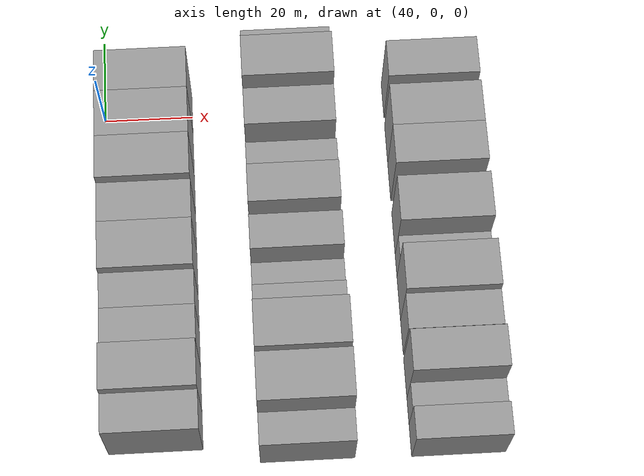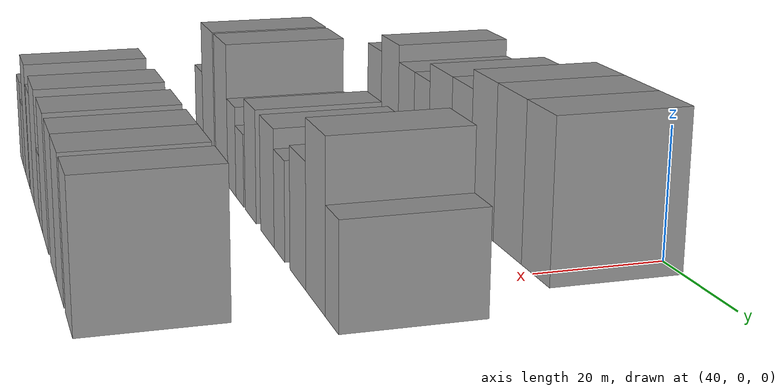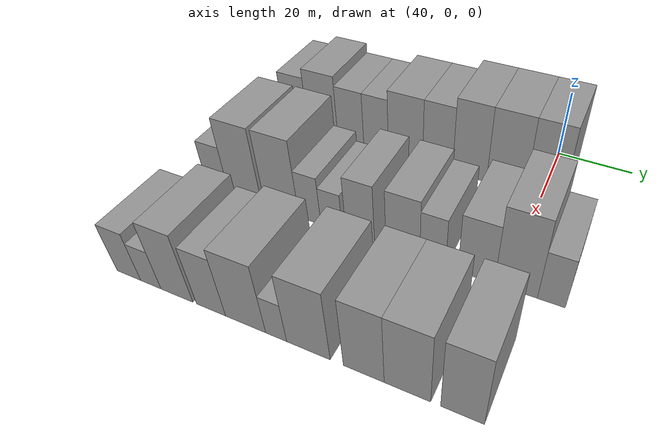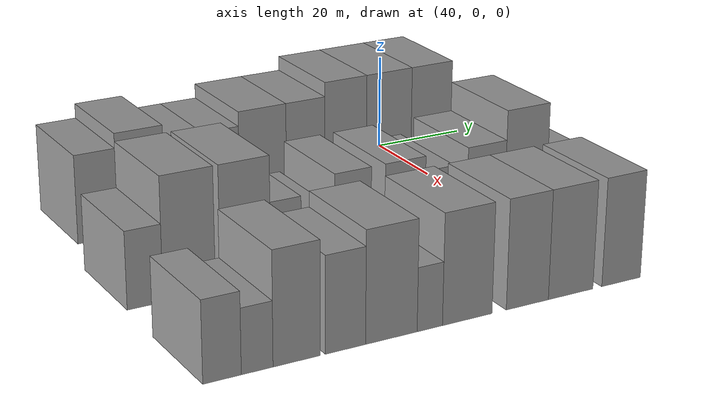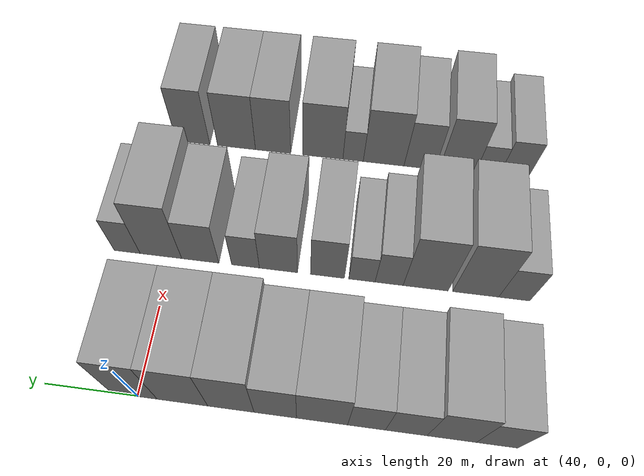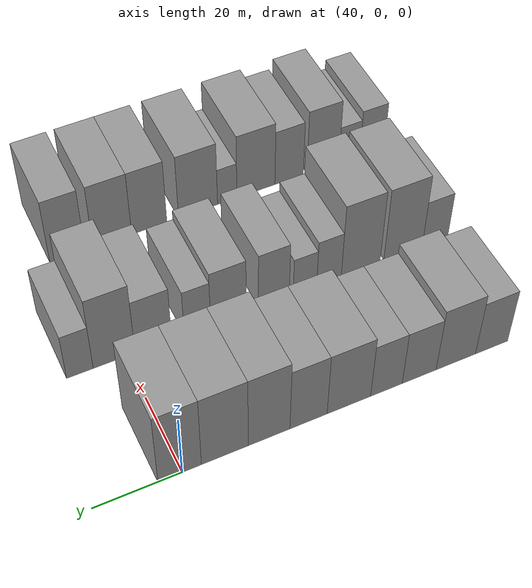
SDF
<sdf version="1.6">
 <world name="default">
  <model name="building_32">
   <static>1</static>
   <pose>50.0000 -74.1132 0 0.000000 0.000000 0.000000</pose>
   <link name="link">
    <pose>0 0 9.00 0 0 0</pose>
    <collision name="collision"><geometry><box><size>20.0000 8.2855 18.0000</size></box></geometry></collision>
    <visual name="visual">
     <cast_shadows>0</cast_shadows>
     <geometry><box><size>20.0000 8.2855 18.0000</size></box></geometry>
     <material>
      <script>
       <uri>model://grey_wall/materials/scripts</uri>
       <uri>model://grey_wall/materials/textures</uri>
       <name>vrc/grey_wall</name>
      </script>
     </material>
    </visual>
   </link>
  </model>
  <model name="building_33">
   <static>1</static>
   <pose>50.0000 -64.9987 0 0.000000 0.000000 0.000000</pose>
   <link name="link">
    <pose>0 0 10.50 0 0 0</pose>
    <collision name="collision"><geometry><box><size>20.0000 9.9436 21.0000</size></box></geometry></collision>
    <visual name="visual">
     <cast_shadows>0</cast_shadows>
     <geometry><box><size>20.0000 9.9436 21.0000</size></box></geometry>
     <material>
      <script>
       <uri>model://grey_wall/materials/scripts</uri>
       <uri>model://grey_wall/materials/textures</uri>
       <name>vrc/grey_wall</name>
      </script>
     </material>
    </visual>
   </link>
  </model>
  <model name="building_34">
   <static>1</static>
   <pose>50.0000 -55.8091 0 0.000000 0.000000 0.000000</pose>
   <link name="link">
    <pose>0 0 9.00 0 0 0</pose>
    <collision name="collision"><geometry><box><size>20.0000 8.4356 18.0000</size></box></geometry></collision>
    <visual name="visual">
     <cast_shadows>0</cast_shadows>
     <geometry><box><size>20.0000 8.4356 18.0000</size></box></geometry>
     <material>
      <script>
       <uri>model://grey_wall/materials/scripts</uri>
       <uri>model://grey_wall/materials/textures</uri>
       <name>vrc/grey_wall</name>
      </script>
     </material>
    </visual>
   </link>
  </model>
  <model name="building_35">
   <static>1</static>
   <pose>50.0000 -47.7244 0 0.000000 0.000000 0.000000</pose>
   <link name="link">
    <pose>0 0 9.00 0 0 0</pose>
    <collision name="collision"><geometry><box><size>20.0000 7.7337 18.0000</size></box></geometry></collision>
    <visual name="visual">
     <cast_shadows>0</cast_shadows>
     <geometry><box><size>20.0000 7.7337 18.0000</size></box></geometry>
     <material>
      <script>
       <uri>model://grey_wall/materials/scripts</uri>
       <uri>model://grey_wall/materials/textures</uri>
       <name>vrc/grey_wall</name>
      </script>
     </material>
    </visual>
   </link>
  </model>
  <model name="building_36">
   <static>1</static>
   <pose>50.0000 -38.6169 0 0.000000 0.000000 0.000000</pose>
   <link name="link">
    <pose>0 0 10.50 0 0 0</pose>
    <collision name="collision"><geometry><box><size>20.0000 10.4813 21.0000</size></box></geometry></collision>
    <visual name="visual">
     <cast_shadows>0</cast_shadows>
     <geometry><box><size>20.0000 10.4813 21.0000</size></box></geometry>
     <material>
      <script>
       <uri>model://grey_wall/materials/scripts</uri>
       <uri>model://grey_wall/materials/textures</uri>
       <name>vrc/grey_wall</name>
      </script>
     </material>
    </visual>
   </link>
  </model>
  <model name="building_37">
   <static>1</static>
   <pose>50.0000 -28.9720 0 0.000000 0.000000 0.000000</pose>
   <link name="link">
    <pose>0 0 10.50 0 0 0</pose>
    <collision name="collision"><geometry><box><size>20.0000 8.8084 21.0000</size></box></geometry></collision>
    <visual name="visual">
     <cast_shadows>0</cast_shadows>
     <geometry><box><size>20.0000 8.8084 21.0000</size></box></geometry>
     <material>
      <script>
       <uri>model://grey_wall/materials/scripts</uri>
       <uri>model://grey_wall/materials/textures</uri>
       <name>vrc/grey_wall</name>
      </script>
     </material>
    </visual>
   </link>
  </model>
  <model name="building_38">
   <static>1</static>
   <pose>50.0000 -19.7284 0 0.000000 0.000000 0.000000</pose>
   <link name="link">
    <pose>0 0 12.00 0 0 0</pose>
    <collision name="collision"><geometry><box><size>20.0000 9.6789 24.0000</size></box></geometry></collision>
    <visual name="visual">
     <cast_shadows>0</cast_shadows>
     <geometry><box><size>20.0000 9.6789 24.0000</size></box></geometry>
     <material>
      <script>
       <uri>model://grey_wall/materials/scripts</uri>
       <uri>model://grey_wall/materials/textures</uri>
       <name>vrc/grey_wall</name>
      </script>
     </material>
    </visual>
   </link>
  </model>
  <model name="building_39">
   <static>1</static>
   <pose>50.0000 -9.5518 0 0.000000 0.000000 0.000000</pose>
   <link name="link">
    <pose>0 0 12.00 0 0 0</pose>
    <collision name="collision"><geometry><box><size>20.0000 10.6742 24.0000</size></box></geometry></collision>
    <visual name="visual">
     <cast_shadows>0</cast_shadows>
     <geometry><box><size>20.0000 10.6742 24.0000</size></box></geometry>
     <material>
      <script>
       <uri>model://grey_wall/materials/scripts</uri>
       <uri>model://grey_wall/materials/textures</uri>
       <name>vrc/grey_wall</name>
      </script>
     </material>
    </visual>
   </link>
  </model>
  <model name="building_40">
   <static>1</static>
   <pose>50.0000 0.6516 0 0.000000 0.000000 0.000000</pose>
   <link name="link">
    <pose>0 0 12.00 0 0 0</pose>
    <collision name="collision"><geometry><box><size>20.0000 9.7326 24.0000</size></box></geometry></collision>
    <visual name="visual">
     <cast_shadows>0</cast_shadows>
     <geometry><box><size>20.0000 9.7326 24.0000</size></box></geometry>
     <material>
      <script>
       <uri>model://grey_wall/materials/scripts</uri>
       <uri>model://grey_wall/materials/textures</uri>
       <name>vrc/grey_wall</name>
      </script>
     </material>
    </visual>
   </link>
  </model>
  <model name="building_113">
   <static>1</static>
   <pose>82.0000 -78.2129 0 0.000000 0.000000 0.000000</pose>
   <link name="link">
    <pose>0 0 7.50 0 0 0</pose>
    <collision name="collision"><geometry><box><size>20.0000 6.9017 15.0000</size></box></geometry></collision>
    <visual name="visual">
     <cast_shadows>0</cast_shadows>
     <geometry><box><size>20.0000 6.9017 15.0000</size></box></geometry>
     <material>
      <script>
       <uri>model://grey_wall/materials/scripts</uri>
       <uri>model://grey_wall/materials/textures</uri>
       <name>vrc/grey_wall</name>
      </script>
     </material>
    </visual>
   </link>
  </model>
  <model name="building_114">
   <static>1</static>
   <pose>82.0000 -69.6232 0 0.000000 0.000000 0.000000</pose>
   <link name="link">
    <pose>0 0 12.00 0 0 0</pose>
    <collision name="collision"><geometry><box><size>20.0000 10.2777 24.0000</size></box></geometry></collision>
    <visual name="visual">
     <cast_shadows>0</cast_shadows>
     <geometry><box><size>20.0000 10.2777 24.0000</size></box></geometry>
     <material>
      <script>
       <uri>model://grey_wall/materials/scripts</uri>
       <uri>model://grey_wall/materials/textures</uri>
       <name>vrc/grey_wall</name>
      </script>
     </material>
    </visual>
   </link>
  </model>
  <model name="building_115">
   <static>1</static>
   <pose>82.0000 -58.4166 0 0.000000 0.000000 0.000000</pose>
   <link name="link">
    <pose>0 0 12.00 0 0 0</pose>
    <collision name="collision"><geometry><box><size>20.0000 10.1355 24.0000</size></box></geometry></collision>
    <visual name="visual">
     <cast_shadows>0</cast_shadows>
     <geometry><box><size>20.0000 10.1355 24.0000</size></box></geometry>
     <material>
      <script>
       <uri>model://grey_wall/materials/scripts</uri>
       <uri>model://grey_wall/materials/textures</uri>
       <name>vrc/grey_wall</name>
      </script>
     </material>
    </visual>
   </link>
  </model>
  <model name="building_116">
   <static>1</static>
   <pose>82.0000 -50.1716 0 0.000000 0.000000 0.000000</pose>
   <link name="link">
    <pose>0 0 7.50 0 0 0</pose>
    <collision name="collision"><geometry><box><size>20.0000 6.3544 15.0000</size></box></geometry></collision>
    <visual name="visual">
     <cast_shadows>0</cast_shadows>
     <geometry><box><size>20.0000 6.3544 15.0000</size></box></geometry>
     <material>
      <script>
       <uri>model://grey_wall/materials/scripts</uri>
       <uri>model://grey_wall/materials/textures</uri>
       <name>vrc/grey_wall</name>
      </script>
     </material>
    </visual>
   </link>
  </model>
  <model name="building_117">
   <static>1</static>
   <pose>82.0000 -44.0033 0 0.000000 0.000000 0.000000</pose>
   <link name="link">
    <pose>0 0 6.00 0 0 0</pose>
    <collision name="collision"><geometry><box><size>20.0000 5.9822 12.0000</size></box></geometry></collision>
    <visual name="visual">
     <cast_shadows>0</cast_shadows>
     <geometry><box><size>20.0000 5.9822 12.0000</size></box></geometry>
     <material>
      <script>
       <uri>model://grey_wall/materials/scripts</uri>
       <uri>model://grey_wall/materials/textures</uri>
       <name>vrc/grey_wall</name>
      </script>
     </material>
    </visual>
   </link>
  </model>
  <model name="building_118">
   <static>1</static>
   <pose>82.0000 -36.1231 0 0.000000 0.000000 0.000000</pose>
   <link name="link">
    <pose>0 0 9.00 0 0 0</pose>
    <collision name="collision"><geometry><box><size>20.0000 7.7782 18.0000</size></box></geometry></collision>
    <visual name="visual">
     <cast_shadows>0</cast_shadows>
     <geometry><box><size>20.0000 7.7782 18.0000</size></box></geometry>
     <material>
      <script>
       <uri>model://grey_wall/materials/scripts</uri>
       <uri>model://grey_wall/materials/textures</uri>
       <name>vrc/grey_wall</name>
      </script>
     </material>
    </visual>
   </link>
  </model>
  <model name="building_119">
   <static>1</static>
   <pose>82.0000 -24.8423 0 0.000000 0.000000 0.000000</pose>
   <link name="link">
    <pose>0 0 9.00 0 0 0</pose>
    <collision name="collision"><geometry><box><size>20.0000 8.7834 18.0000</size></box></geometry></collision>
    <visual name="visual">
     <cast_shadows>0</cast_shadows>
     <geometry><box><size>20.0000 8.7834 18.0000</size></box></geometry>
     <material>
      <script>
       <uri>model://grey_wall/materials/scripts</uri>
       <uri>model://grey_wall/materials/textures</uri>
       <name>vrc/grey_wall</name>
      </script>
     </material>
    </visual>
   </link>
  </model>
  <model name="building_120">
   <static>1</static>
   <pose>82.0000 -17.2281 0 0.000000 0.000000 0.000000</pose>
   <link name="link">
    <pose>0 0 7.50 0 0 0</pose>
    <collision name="collision"><geometry><box><size>20.0000 6.4450 15.0000</size></box></geometry></collision>
    <visual name="visual">
     <cast_shadows>0</cast_shadows>
     <geometry><box><size>20.0000 6.4450 15.0000</size></box></geometry>
     <material>
      <script>
       <uri>model://grey_wall/materials/scripts</uri>
       <uri>model://grey_wall/materials/textures</uri>
       <name>vrc/grey_wall</name>
      </script>
     </material>
    </visual>
   </link>
  </model>
  <model name="building_121">
   <static>1</static>
   <pose>82.0000 -6.6397 0 0.000000 0.000000 0.000000</pose>
   <link name="link">
    <pose>0 0 9.00 0 0 0</pose>
    <collision name="collision"><geometry><box><size>20.0000 8.7318 18.0000</size></box></geometry></collision>
    <visual name="visual">
     <cast_shadows>0</cast_shadows>
     <geometry><box><size>20.0000 8.7318 18.0000</size></box></geometry>
     <material>
      <script>
       <uri>model://grey_wall/materials/scripts</uri>
       <uri>model://grey_wall/materials/textures</uri>
       <name>vrc/grey_wall</name>
      </script>
     </material>
    </visual>
   </link>
  </model>
  <model name="building_122">
   <static>1</static>
   <pose>82.0000 2.6378 0 0.000000 0.000000 0.000000</pose>
   <link name="link">
    <pose>0 0 12.00 0 0 0</pose>
    <collision name="collision"><geometry><box><size>20.0000 9.8232 24.0000</size></box></geometry></collision>
    <visual name="visual">
     <cast_shadows>0</cast_shadows>
     <geometry><box><size>20.0000 9.8232 24.0000</size></box></geometry>
     <material>
      <script>
       <uri>model://grey_wall/materials/scripts</uri>
       <uri>model://grey_wall/materials/textures</uri>
       <name>vrc/grey_wall</name>
      </script>
     </material>
    </visual>
   </link>
  </model>
  <model name="building_123">
   <static>1</static>
   <pose>82.0000 10.6384 0 0.000000 0.000000 0.000000</pose>
   <link name="link">
    <pose>0 0 7.50 0 0 0</pose>
    <collision name="collision"><geometry><box><size>20.0000 6.1781 15.0000</size></box></geometry></collision>
    <visual name="visual">
     <cast_shadows>0</cast_shadows>
     <geometry><box><size>20.0000 6.1781 15.0000</size></box></geometry>
     <material>
      <script>
       <uri>model://grey_wall/materials/scripts</uri>
       <uri>model://grey_wall/materials/textures</uri>
       <name>vrc/grey_wall</name>
      </script>
     </material>
    </visual>
   </link>
  </model>
  <model name="building_190">
   <static>1</static>
   <pose>114.0000 -78.5611 0 0.000000 0.000000 0.000000</pose>
   <link name="link">
    <pose>0 0 7.50 0 0 0</pose>
    <collision name="collision"><geometry><box><size>20.0000 6.9448 15.0000</size></box></geometry></collision>
    <visual name="visual">
     <cast_shadows>0</cast_shadows>
     <geometry><box><size>20.0000 6.9448 15.0000</size></box></geometry>
     <material>
      <script>
       <uri>model://grey_wall/materials/scripts</uri>
       <uri>model://grey_wall/materials/textures</uri>
       <name>vrc/grey_wall</name>
      </script>
     </material>
    </visual>
   </link>
  </model>
  <model name="building_191">
   <static>1</static>
   <pose>114.0000 -72.1791 0 0.000000 0.000000 0.000000</pose>
   <link name="link">
    <pose>0 0 6.00 0 0 0</pose>
    <collision name="collision"><geometry><box><size>20.0000 5.8192 12.0000</size></box></geometry></collision>
    <visual name="visual">
     <cast_shadows>0</cast_shadows>
     <geometry><box><size>20.0000 5.8192 12.0000</size></box></geometry>
     <material>
      <script>
       <uri>model://grey_wall/materials/scripts</uri>
       <uri>model://grey_wall/materials/textures</uri>
       <name>vrc/grey_wall</name>
      </script>
     </material>
    </visual>
   </link>
  </model>
  <model name="building_192">
   <static>1</static>
   <pose>114.0000 -64.8537 0 0.000000 0.000000 0.000000</pose>
   <link name="link">
    <pose>0 0 10.50 0 0 0</pose>
    <collision name="collision"><geometry><box><size>20.0000 8.8315 21.0000</size></box></geometry></collision>
    <visual name="visual">
     <cast_shadows>0</cast_shadows>
     <geometry><box><size>20.0000 8.8315 21.0000</size></box></geometry>
     <material>
      <script>
       <uri>model://grey_wall/materials/scripts</uri>
       <uri>model://grey_wall/materials/textures</uri>
       <name>vrc/grey_wall</name>
      </script>
     </material>
    </visual>
   </link>
  </model>
  <model name="building_193">
   <static>1</static>
   <pose>114.0000 -55.5780 0 0.000000 0.000000 0.000000</pose>
   <link name="link">
    <pose>0 0 9.00 0 0 0</pose>
    <collision name="collision"><geometry><box><size>20.0000 7.7198 18.0000</size></box></geometry></collision>
    <visual name="visual">
     <cast_shadows>0</cast_shadows>
     <geometry><box><size>20.0000 7.7198 18.0000</size></box></geometry>
     <material>
      <script>
       <uri>model://grey_wall/materials/scripts</uri>
       <uri>model://grey_wall/materials/textures</uri>
       <name>vrc/grey_wall</name>
      </script>
     </material>
    </visual>
   </link>
  </model>
  <model name="building_194">
   <static>1</static>
   <pose>114.0000 -46.6246 0 0.000000 0.000000 0.000000</pose>
   <link name="link">
    <pose>0 0 10.50 0 0 0</pose>
    <collision name="collision"><geometry><box><size>20.0000 10.1871 21.0000</size></box></geometry></collision>
    <visual name="visual">
     <cast_shadows>0</cast_shadows>
     <geometry><box><size>20.0000 10.1871 21.0000</size></box></geometry>
     <material>
      <script>
       <uri>model://grey_wall/materials/scripts</uri>
       <uri>model://grey_wall/materials/textures</uri>
       <name>vrc/grey_wall</name>
      </script>
     </material>
    </visual>
   </link>
  </model>
  <model name="building_195">
   <static>1</static>
   <pose>114.0000 -38.9742 0 0.000000 0.000000 0.000000</pose>
   <link name="link">
    <pose>0 0 6.00 0 0 0</pose>
    <collision name="collision"><geometry><box><size>20.0000 5.1136 12.0000</size></box></geometry></collision>
    <visual name="visual">
     <cast_shadows>0</cast_shadows>
     <geometry><box><size>20.0000 5.1136 12.0000</size></box></geometry>
     <material>
      <script>
       <uri>model://grey_wall/materials/scripts</uri>
       <uri>model://grey_wall/materials/textures</uri>
       <name>vrc/grey_wall</name>
      </script>
     </material>
    </visual>
   </link>
  </model>
  <model name="building_196">
   <static>1</static>
   <pose>114.0000 -31.3085 0 0.000000 0.000000 0.000000</pose>
   <link name="link">
    <pose>0 0 10.50 0 0 0</pose>
    <collision name="collision"><geometry><box><size>20.0000 10.2177 21.0000</size></box></geometry></collision>
    <visual name="visual">
     <cast_shadows>0</cast_shadows>
     <geometry><box><size>20.0000 10.2177 21.0000</size></box></geometry>
     <material>
      <script>
       <uri>model://grey_wall/materials/scripts</uri>
       <uri>model://grey_wall/materials/textures</uri>
       <name>vrc/grey_wall</name>
      </script>
     </material>
    </visual>
   </link>
  </model>
  <model name="building_197">
   <static>1</static>
   <pose>114.0000 -18.7058 0 0.000000 0.000000 0.000000</pose>
   <link name="link">
    <pose>0 0 10.50 0 0 0</pose>
    <collision name="collision"><geometry><box><size>20.0000 8.9875 21.0000</size></box></geometry></collision>
    <visual name="visual">
     <cast_shadows>0</cast_shadows>
     <geometry><box><size>20.0000 8.9875 21.0000</size></box></geometry>
     <material>
      <script>
       <uri>model://grey_wall/materials/scripts</uri>
       <uri>model://grey_wall/materials/textures</uri>
       <name>vrc/grey_wall</name>
      </script>
     </material>
    </visual>
   </link>
  </model>
  <model name="building_198">
   <static>1</static>
   <pose>114.0000 -9.3363 0 0.000000 0.000000 0.000000</pose>
   <link name="link">
    <pose>0 0 10.50 0 0 0</pose>
    <collision name="collision"><geometry><box><size>20.0000 9.7516 21.0000</size></box></geometry></collision>
    <visual name="visual">
     <cast_shadows>0</cast_shadows>
     <geometry><box><size>20.0000 9.7516 21.0000</size></box></geometry>
     <material>
      <script>
       <uri>model://grey_wall/materials/scripts</uri>
       <uri>model://grey_wall/materials/textures</uri>
       <name>vrc/grey_wall</name>
      </script>
     </material>
    </visual>
   </link>
  </model>
  <model name="building_199">
   <static>1</static>
   <pose>114.0000 1.8747 0 0.000000 0.000000 0.000000</pose>
   <link name="link">
    <pose>0 0 10.50 0 0 0</pose>
    <collision name="collision"><geometry><box><size>20.0000 8.6704 21.0000</size></box></geometry></collision>
    <visual name="visual">
     <cast_shadows>0</cast_shadows>
     <geometry><box><size>20.0000 8.6704 21.0000</size></box></geometry>
     <material>
      <script>
       <uri>model://grey_wall/materials/scripts</uri>
       <uri>model://grey_wall/materials/textures</uri>
       <name>vrc/grey_wall</name>
      </script>
     </material>
    </visual>
   </link>
  </model>
 </world>
</sdf>
